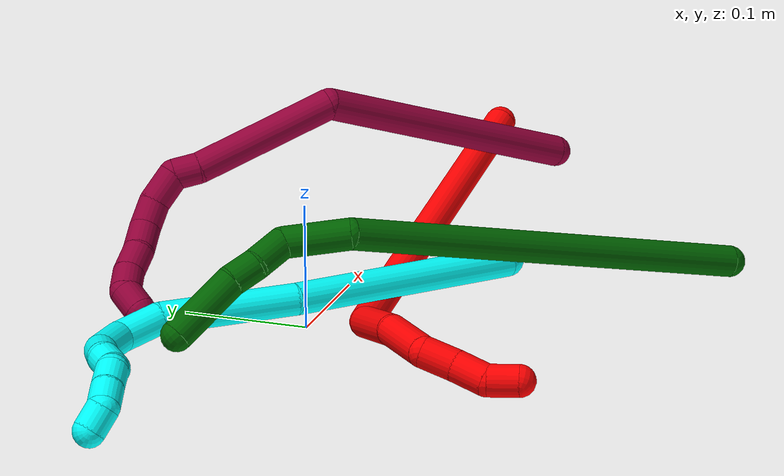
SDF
<sdf version="1.7">
 <world name="default">
  <model name="photoneo_s_sensor">
   <static>1</static>
   <pose>0 0 2 1.57079 1.57079 3.14159</pose>
   <link name="link">
    <inertial><mass>0.1</mass></inertial>
    <sensor name="sensor" type="depth">
     <update_rate>30</update_rate>
     <camera>
      <horizontal_fov>1.22</horizontal_fov>
      <image><width>1920</width><height>1200</height><format>B8G8R8</format></image>
      <clip><near>0.1</near><far>4</far></clip>
      <depth_camera><output>points</output></depth_camera>
     </camera>
     <plugin name="camera_plugin" filename="libgazebo_ros_depth_camera.so">
      <baseline>0.2</baseline>
      <alwaysOn>1</alwaysOn>
      <updateRate>0.0</updateRate>
      <cameraName>camera_ir</cameraName>
      <imageTopicName>/camera/color/image_raw</imageTopicName>
      <cameraInfoTopicName>/camera/color/camera_info</cameraInfoTopicName>
      <depthImageTopicName>/camera/depth/image_raw</depthImageTopicName>
      <depthImageCameraInfoTopicName>/camera/depth/camera_info</depthImageCameraInfoTopicName>
      <pointCloudTopicName>/camera/depth/points</pointCloudTopicName>
      <frameName>fr_optical</frameName>
      <pointCloudCutoff>0.1</pointCloudCutoff>
      <pointCloudCutoffMax>2.0</pointCloudCutoffMax>
      <distortionK1>0</distortionK1>
      <distortionK2>0</distortionK2>
      <distortionK3>0</distortionK3>
      <distortionT1>0</distortionT1>
      <distortionT2>0</distortionT2>
      <CxPrime>0</CxPrime>
      <Cx>0</Cx>
      <Cy>0</Cy>
      <focalLength>0</focalLength>
      <hackBaseline>0</hackBaseline>
     </plugin>
    </sensor>
   </link>
  </model>
  <model name="2">
   <static>0</static>
   <link name="2">
    <collision name="collision-cylinder-e_1_1_4">
     <pose>0.016493 -0.044263 0.115802 0.365093 0.132257 0.024449</pose>
     <geometry><cylinder><radius>0.0125</radius><length>0.250131</length></cylinder></geometry>
     <surface>
      <friction><ode><mu>1.16</mu><mu2>1.16</mu2><slip1>0</slip1><slip2>0</slip2></ode></friction>
      <contact><ode><kp>1e+06</kp><kd>1</kd><max_vel>0</max_vel><min_depth>0.001</min_depth></ode></contact>
     </surface>
    </collision>
    <visual name="visual-cylinder-e_1_1_4">
     <pose>0.016493 -0.044263 0.115802 0.365093 0.132257 0.024449</pose>
     <geometry><cylinder><radius>0.0125</radius><length>0.250131</length></cylinder></geometry>
     <material><ambient>1 0 0 1</ambient></material>
    </visual>
    <collision name="collision-cylinder-e_2_4_5">
     <pose>0.030352 -0.10603 0.255807 0.626139 -0.087922 -0.028478</pose>
     <geometry><cylinder><radius>0.0125</radius><length>0.05997</length></cylinder></geometry>
     <surface>
      <friction><ode><mu>1.16</mu><mu2>1.16</mu2><slip1>0</slip1><slip2>0</slip2></ode></friction>
      <contact><ode><kp>1e+06</kp><kd>1</kd><max_vel>0</max_vel><min_depth>0.001</min_depth></ode></contact>
     </surface>
    </collision>
    <visual name="visual-cylinder-e_2_4_5">
     <pose>0.030352 -0.10603 0.255807 0.626139 -0.087922 -0.028478</pose>
     <geometry><cylinder><radius>0.0125</radius><length>0.05997</length></cylinder></geometry>
     <material><ambient>1 0 0 1</ambient></material>
    </visual>
    <collision name="collision-cylinder-e_3_5_6">
     <pose>0.008494 -0.140638 0.295798 0.825411 -0.690343 -0.31231</pose>
     <geometry><cylinder><radius>0.0125</radius><length>0.060379</length></cylinder></geometry>
     <surface>
      <friction><ode><mu>1.16</mu><mu2>1.16</mu2><slip1>0</slip1><slip2>0</slip2></ode></friction>
      <contact><ode><kp>1e+06</kp><kd>1</kd><max_vel>0</max_vel><min_depth>0.001</min_depth></ode></contact>
     </surface>
    </collision>
    <visual name="visual-cylinder-e_3_5_6">
     <pose>0.008494 -0.140638 0.295798 0.825411 -0.690343 -0.31231</pose>
     <geometry><cylinder><radius>0.0125</radius><length>0.060379</length></cylinder></geometry>
     <material><ambient>1 0 0 1</ambient></material>
    </visual>
    <collision name="collision-cylinder-e_4_6_7">
     <pose>-0.028611 -0.166282 0.327426 0.494446 -0.782189 -0.207388</pose>
     <geometry><cylinder><radius>0.0125</radius><length>0.050737</length></cylinder></geometry>
     <surface>
      <friction><ode><mu>1.16</mu><mu2>1.16</mu2><slip1>0</slip1><slip2>0</slip2></ode></friction>
      <contact><ode><kp>1e+06</kp><kd>1</kd><max_vel>0</max_vel><min_depth>0.001</min_depth></ode></contact>
     </surface>
    </collision>
    <visual name="visual-cylinder-e_4_6_7">
     <pose>-0.028611 -0.166282 0.327426 0.494446 -0.782189 -0.207388</pose>
     <geometry><cylinder><radius>0.0125</radius><length>0.050737</length></cylinder></geometry>
     <material><ambient>1 0 0 1</ambient></material>
    </visual>
    <collision name="collision-cylinder-e_5_7_8">
     <pose>-0.058797 -0.170743 0.347125 -0.813206 -1.1427 0.540116</pose>
     <geometry><cylinder><radius>0.0125</radius><length>0.027053</length></cylinder></geometry>
     <surface>
      <friction><ode><mu>1.16</mu><mu2>1.16</mu2><slip1>0</slip1><slip2>0</slip2></ode></friction>
      <contact><ode><kp>1e+06</kp><kd>1</kd><max_vel>0</max_vel><min_depth>0.001</min_depth></ode></contact>
     </surface>
    </collision>
    <visual name="visual-cylinder-e_5_7_8">
     <pose>-0.058797 -0.170743 0.347125 -0.813206 -1.1427 0.540116</pose>
     <geometry><cylinder><radius>0.0125</radius><length>0.027053</length></cylinder></geometry>
     <material><ambient>1 0 0 1</ambient></material>
    </visual>
    <collision name="collision-cylinder-e_6_8_9">
     <pose>-0.083371 -0.164039 0.356232 -0.463587 -1.12462 0.295323</pose>
     <geometry><cylinder><radius>0.0125</radius><length>0.027199</length></cylinder></geometry>
     <surface>
      <friction><ode><mu>1.16</mu><mu2>1.16</mu2><slip1>0</slip1><slip2>0</slip2></ode></friction>
      <contact><ode><kp>1e+06</kp><kd>1</kd><max_vel>0</max_vel><min_depth>0.001</min_depth></ode></contact>
     </surface>
    </collision>
    <visual name="visual-cylinder-e_6_8_9">
     <pose>-0.083371 -0.164039 0.356232 -0.463587 -1.12462 0.295323</pose>
     <geometry><cylinder><radius>0.0125</radius><length>0.027199</length></cylinder></geometry>
     <material><ambient>1 0 0 1</ambient></material>
    </visual>
    <collision name="collision-cylinder-e_7_9_2">
     <pose>-0.107475 -0.158493 0.360128 -2.00442 -1.30513 1.74889</pose>
     <geometry><cylinder><radius>0.0125</radius><length>0.024532</length></cylinder></geometry>
     <surface>
      <friction><ode><mu>1.16</mu><mu2>1.16</mu2><slip1>0</slip1><slip2>0</slip2></ode></friction>
      <contact><ode><kp>1e+06</kp><kd>1</kd><max_vel>0</max_vel><min_depth>0.001</min_depth></ode></contact>
     </surface>
    </collision>
    <visual name="visual-cylinder-e_7_9_2">
     <pose>-0.107475 -0.158493 0.360128 -2.00442 -1.30513 1.74889</pose>
     <geometry><cylinder><radius>0.0125</radius><length>0.024532</length></cylinder></geometry>
     <material><ambient>1 0 0 1</ambient></material>
    </visual>
    <collision name="collision-sphere-2">
     <pose>-0.11931 -0.15557 0.358775 0 -0 0</pose>
     <geometry><sphere><radius>0.0125</radius></sphere></geometry>
     <surface>
      <friction><ode><mu>1.16</mu><mu2>1.16</mu2><slip1>0</slip1><slip2>0</slip2></ode></friction>
      <contact><ode><kp>1e+06</kp><kd>1</kd><max_vel>0</max_vel><min_depth>0.001</min_depth></ode></contact>
     </surface>
    </collision>
    <visual name="visual-sphere-2">
     <pose>-0.11931 -0.15557 0.358775 0 -0 0</pose>
     <geometry><sphere><radius>0.0125</radius></sphere></geometry>
     <material><ambient>1 0 0 1</ambient></material>
    </visual>
    <collision name="collision-sphere-9">
     <pose>-0.095639 -0.161415 0.361481 0 -0 0</pose>
     <geometry><sphere><radius>0.0125</radius></sphere></geometry>
     <surface>
      <friction><ode><mu>1.16</mu><mu2>1.16</mu2><slip1>0</slip1><slip2>0</slip2></ode></friction>
      <contact><ode><kp>1e+06</kp><kd>1</kd><max_vel>0</max_vel><min_depth>0.001</min_depth></ode></contact>
     </surface>
    </collision>
    <visual name="visual-sphere-9">
     <pose>-0.095639 -0.161415 0.361481 0 -0 0</pose>
     <geometry><sphere><radius>0.0125</radius></sphere></geometry>
     <material><ambient>1 0 0 1</ambient></material>
    </visual>
    <collision name="collision-sphere-4">
     <pose>0.032985 -0.088526 0.231604 0 -0 0</pose>
     <geometry><sphere><radius>0.0125</radius></sphere></geometry>
     <surface>
      <friction><ode><mu>1.16</mu><mu2>1.16</mu2><slip1>0</slip1><slip2>0</slip2></ode></friction>
      <contact><ode><kp>1e+06</kp><kd>1</kd><max_vel>0</max_vel><min_depth>0.001</min_depth></ode></contact>
     </surface>
    </collision>
    <visual name="visual-sphere-4">
     <pose>0.032985 -0.088526 0.231604 0 -0 0</pose>
     <geometry><sphere><radius>0.0125</radius></sphere></geometry>
     <material><ambient>1 0 0 1</ambient></material>
    </visual>
    <collision name="collision-sphere-1">
     <geometry><sphere><radius>0.0125</radius></sphere></geometry>
     <surface>
      <friction><ode><mu>1.16</mu><mu2>1.16</mu2><slip1>0</slip1><slip2>0</slip2></ode></friction>
      <contact><ode><kp>1e+06</kp><kd>1</kd><max_vel>0</max_vel><min_depth>0.001</min_depth></ode></contact>
     </surface>
    </collision>
    <visual name="visual-sphere-1">
     <geometry><sphere><radius>0.0125</radius></sphere></geometry>
     <material><ambient>1 0 0 1</ambient></material>
    </visual>
    <collision name="collision-sphere-8">
     <pose>-0.071103 -0.166663 0.350983 0 -0 0</pose>
     <geometry><sphere><radius>0.0125</radius></sphere></geometry>
     <surface>
      <friction><ode><mu>1.16</mu><mu2>1.16</mu2><slip1>0</slip1><slip2>0</slip2></ode></friction>
      <contact><ode><kp>1e+06</kp><kd>1</kd><max_vel>0</max_vel><min_depth>0.001</min_depth></ode></contact>
     </surface>
    </collision>
    <visual name="visual-sphere-8">
     <pose>-0.071103 -0.166663 0.350983 0 -0 0</pose>
     <geometry><sphere><radius>0.0125</radius></sphere></geometry>
     <material><ambient>1 0 0 1</ambient></material>
    </visual>
    <collision name="collision-sphere-5">
     <pose>0.027719 -0.123534 0.28001 0 -0 0</pose>
     <geometry><sphere><radius>0.0125</radius></sphere></geometry>
     <surface>
      <friction><ode><mu>1.16</mu><mu2>1.16</mu2><slip1>0</slip1><slip2>0</slip2></ode></friction>
      <contact><ode><kp>1e+06</kp><kd>1</kd><max_vel>0</max_vel><min_depth>0.001</min_depth></ode></contact>
     </surface>
    </collision>
    <visual name="visual-sphere-5">
     <pose>0.027719 -0.123534 0.28001 0 -0 0</pose>
     <geometry><sphere><radius>0.0125</radius></sphere></geometry>
     <material><ambient>1 0 0 1</ambient></material>
    </visual>
    <collision name="collision-sphere-6">
     <pose>-0.01073 -0.157743 0.311585 0 -0 0</pose>
     <geometry><sphere><radius>0.0125</radius></sphere></geometry>
     <surface>
      <friction><ode><mu>1.16</mu><mu2>1.16</mu2><slip1>0</slip1><slip2>0</slip2></ode></friction>
      <contact><ode><kp>1e+06</kp><kd>1</kd><max_vel>0</max_vel><min_depth>0.001</min_depth></ode></contact>
     </surface>
    </collision>
    <visual name="visual-sphere-6">
     <pose>-0.01073 -0.157743 0.311585 0 -0 0</pose>
     <geometry><sphere><radius>0.0125</radius></sphere></geometry>
     <material><ambient>1 0 0 1</ambient></material>
    </visual>
    <collision name="collision-sphere-7">
     <pose>-0.046491 -0.174822 0.343266 0 -0 0</pose>
     <geometry><sphere><radius>0.0125</radius></sphere></geometry>
     <surface>
      <friction><ode><mu>1.16</mu><mu2>1.16</mu2><slip1>0</slip1><slip2>0</slip2></ode></friction>
      <contact><ode><kp>1e+06</kp><kd>1</kd><max_vel>0</max_vel><min_depth>0.001</min_depth></ode></contact>
     </surface>
    </collision>
    <visual name="visual-sphere-7">
     <pose>-0.046491 -0.174822 0.343266 0 -0 0</pose>
     <geometry><sphere><radius>0.0125</radius></sphere></geometry>
     <material><ambient>1 0 0 1</ambient></material>
    </visual>
    <inertial>
     <pose>-0.002976 -0.094654 0.213387 0 -0 0</pose>
     <mass>0.5</mass>
     <inertia>
      <ixx>0.001365</ixx>
      <ixy>0</ixy>
      <ixz>0</ixz>
      <iyy>0.001294</iyy>
      <iyz>0</iyz>
      <izz>0.000377</izz>
     </inertia>
    </inertial>
   </link>
   <pose>0.296525 -0.064399 0.082795 -2.21026 0.146643 1.5792</pose>
  </model>
  <model name="3">
   <static>0</static>
   <link name="3">
    <collision name="collision-cylinder-e_1_1_4">
     <pose>-0.083698 0.038808 -0.019661 -2.03973 -1.09146 1.5591</pose>
     <geometry><cylinder><radius>0.0125</radius><length>0.188658</length></cylinder></geometry>
     <surface>
      <friction><ode><mu>1.16</mu><mu2>1.16</mu2><slip1>0</slip1><slip2>0</slip2></ode></friction>
      <contact><ode><kp>1e+06</kp><kd>1</kd><max_vel>0</max_vel><min_depth>0.001</min_depth></ode></contact>
     </surface>
    </collision>
    <visual name="visual-cylinder-e_1_1_4">
     <pose>-0.083698 0.038808 -0.019661 -2.03973 -1.09146 1.5591</pose>
     <geometry><cylinder><radius>0.0125</radius><length>0.188658</length></cylinder></geometry>
     <material><ambient>0.003922 1 0.996078 1</ambient></material>
    </visual>
    <collision name="collision-cylinder-e_2_4_5">
     <pose>-0.217781 0.097986 -0.041542 -1.67939 -1.18453 1.28723</pose>
     <geometry><cylinder><radius>0.0125</radius><length>0.108785</length></cylinder></geometry>
     <surface>
      <friction><ode><mu>1.16</mu><mu2>1.16</mu2><slip1>0</slip1><slip2>0</slip2></ode></friction>
      <contact><ode><kp>1e+06</kp><kd>1</kd><max_vel>0</max_vel><min_depth>0.001</min_depth></ode></contact>
     </surface>
    </collision>
    <visual name="visual-cylinder-e_2_4_5">
     <pose>-0.217781 0.097986 -0.041542 -1.67939 -1.18453 1.28723</pose>
     <geometry><cylinder><radius>0.0125</radius><length>0.108785</length></cylinder></geometry>
     <material><ambient>0.003922 1 0.996078 1</ambient></material>
    </visual>
    <collision name="collision-cylinder-e_3_5_6">
     <pose>-0.281794 0.129408 -0.047062 -1.86085 -0.868449 1.11342</pose>
     <geometry><cylinder><radius>0.0125</radius><length>0.035707</length></cylinder></geometry>
     <surface>
      <friction><ode><mu>1.16</mu><mu2>1.16</mu2><slip1>0</slip1><slip2>0</slip2></ode></friction>
      <contact><ode><kp>1e+06</kp><kd>1</kd><max_vel>0</max_vel><min_depth>0.001</min_depth></ode></contact>
     </surface>
    </collision>
    <visual name="visual-cylinder-e_3_5_6">
     <pose>-0.281794 0.129408 -0.047062 -1.86085 -0.868449 1.11342</pose>
     <geometry><cylinder><radius>0.0125</radius><length>0.035707</length></cylinder></geometry>
     <material><ambient>0.003922 1 0.996078 1</ambient></material>
    </visual>
    <collision name="collision-cylinder-e_4_6_7">
     <pose>-0.30385 0.149224 -0.065921 -2.62866 -0.440919 1.41428</pose>
     <geometry><cylinder><radius>0.0125</radius><length>0.039494</length></cylinder></geometry>
     <surface>
      <friction><ode><mu>1.16</mu><mu2>1.16</mu2><slip1>0</slip1><slip2>0</slip2></ode></friction>
      <contact><ode><kp>1e+06</kp><kd>1</kd><max_vel>0</max_vel><min_depth>0.001</min_depth></ode></contact>
     </surface>
    </collision>
    <visual name="visual-cylinder-e_4_6_7">
     <pose>-0.30385 0.149224 -0.065921 -2.62866 -0.440919 1.41428</pose>
     <geometry><cylinder><radius>0.0125</radius><length>0.039494</length></cylinder></geometry>
     <material><ambient>0.003922 1 0.996078 1</ambient></material>
    </visual>
    <collision name="collision-cylinder-e_5_7_8">
     <pose>-0.312722 0.161885 -0.094211 -2.84451 -0.033367 0.222079</pose>
     <geometry><cylinder><radius>0.0125</radius><length>0.026642</length></cylinder></geometry>
     <surface>
      <friction><ode><mu>1.16</mu><mu2>1.16</mu2><slip1>0</slip1><slip2>0</slip2></ode></friction>
      <contact><ode><kp>1e+06</kp><kd>1</kd><max_vel>0</max_vel><min_depth>0.001</min_depth></ode></contact>
     </surface>
    </collision>
    <visual name="visual-cylinder-e_5_7_8">
     <pose>-0.312722 0.161885 -0.094211 -2.84451 -0.033367 0.222079</pose>
     <geometry><cylinder><radius>0.0125</radius><length>0.026642</length></cylinder></geometry>
     <material><ambient>0.003922 1 0.996078 1</ambient></material>
    </visual>
    <collision name="collision-cylinder-e_6_8_9">
     <pose>-0.310022 0.169934 -0.115589 -2.69402 0.316727 -1.22369</pose>
     <geometry><cylinder><radius>0.0125</radius><length>0.020189</length></cylinder></geometry>
     <surface>
      <friction><ode><mu>1.16</mu><mu2>1.16</mu2><slip1>0</slip1><slip2>0</slip2></ode></friction>
      <contact><ode><kp>1e+06</kp><kd>1</kd><max_vel>0</max_vel><min_depth>0.001</min_depth></ode></contact>
     </surface>
    </collision>
    <visual name="visual-cylinder-e_6_8_9">
     <pose>-0.310022 0.169934 -0.115589 -2.69402 0.316727 -1.22369</pose>
     <geometry><cylinder><radius>0.0125</radius><length>0.020189</length></cylinder></geometry>
     <material><ambient>0.003922 1 0.996078 1</ambient></material>
    </visual>
    <collision name="collision-cylinder-e_7_9_10">
     <pose>-0.309 0.175971 -0.134069 -2.95209 -0.208866 1.66858</pose>
     <geometry><cylinder><radius>0.0125</radius><length>0.020468</length></cylinder></geometry>
     <surface>
      <friction><ode><mu>1.16</mu><mu2>1.16</mu2><slip1>0</slip1><slip2>0</slip2></ode></friction>
      <contact><ode><kp>1e+06</kp><kd>1</kd><max_vel>0</max_vel><min_depth>0.001</min_depth></ode></contact>
     </surface>
    </collision>
    <visual name="visual-cylinder-e_7_9_10">
     <pose>-0.309 0.175971 -0.134069 -2.95209 -0.208866 1.66858</pose>
     <geometry><cylinder><radius>0.0125</radius><length>0.020468</length></cylinder></geometry>
     <material><ambient>0.003922 1 0.996078 1</ambient></material>
    </visual>
    <collision name="collision-cylinder-e_8_10_11">
     <pose>-0.312402 0.185283 -0.150502 -2.29744 -0.128091 0.283713</pose>
     <geometry><cylinder><radius>0.0125</radius><length>0.020036</length></cylinder></geometry>
     <surface>
      <friction><ode><mu>1.16</mu><mu2>1.16</mu2><slip1>0</slip1><slip2>0</slip2></ode></friction>
      <contact><ode><kp>1e+06</kp><kd>1</kd><max_vel>0</max_vel><min_depth>0.001</min_depth></ode></contact>
     </surface>
    </collision>
    <visual name="visual-cylinder-e_8_10_11">
     <pose>-0.312402 0.185283 -0.150502 -2.29744 -0.128091 0.283713</pose>
     <geometry><cylinder><radius>0.0125</radius><length>0.020036</length></cylinder></geometry>
     <material><ambient>0.003922 1 0.996078 1</ambient></material>
    </visual>
    <collision name="collision-cylinder-e_9_11_12">
     <pose>-0.314561 0.200688 -0.163081 -2.21381 -0.088059 0.175671</pose>
     <geometry><cylinder><radius>0.0125</radius><length>0.020017</length></cylinder></geometry>
     <surface>
      <friction><ode><mu>1.16</mu><mu2>1.16</mu2><slip1>0</slip1><slip2>0</slip2></ode></friction>
      <contact><ode><kp>1e+06</kp><kd>1</kd><max_vel>0</max_vel><min_depth>0.001</min_depth></ode></contact>
     </surface>
    </collision>
    <visual name="visual-cylinder-e_9_11_12">
     <pose>-0.314561 0.200688 -0.163081 -2.21381 -0.088059 0.175671</pose>
     <geometry><cylinder><radius>0.0125</radius><length>0.020017</length></cylinder></geometry>
     <material><ambient>0.003922 1 0.996078 1</ambient></material>
    </visual>
    <collision name="collision-cylinder-e_10_12_2">
     <pose>-0.31845 0.218173 -0.168277 -1.48877 -0.305464 0.281712</pose>
     <geometry><cylinder><radius>0.0125</radius><length>0.020005</length></cylinder></geometry>
     <surface>
      <friction><ode><mu>1.16</mu><mu2>1.16</mu2><slip1>0</slip1><slip2>0</slip2></ode></friction>
      <contact><ode><kp>1e+06</kp><kd>1</kd><max_vel>0</max_vel><min_depth>0.001</min_depth></ode></contact>
     </surface>
    </collision>
    <visual name="visual-cylinder-e_10_12_2">
     <pose>-0.31845 0.218173 -0.168277 -1.48877 -0.305464 0.281712</pose>
     <geometry><cylinder><radius>0.0125</radius><length>0.020005</length></cylinder></geometry>
     <material><ambient>0.003922 1 0.996078 1</ambient></material>
    </visual>
    <collision name="collision-sphere-2">
     <pose>-0.321458 0.227681 -0.167496 0 -0 0</pose>
     <geometry><sphere><radius>0.0125</radius></sphere></geometry>
     <surface>
      <friction><ode><mu>1.16</mu><mu2>1.16</mu2><slip1>0</slip1><slip2>0</slip2></ode></friction>
      <contact><ode><kp>1e+06</kp><kd>1</kd><max_vel>0</max_vel><min_depth>0.001</min_depth></ode></contact>
     </surface>
    </collision>
    <visual name="visual-sphere-2">
     <pose>-0.321458 0.227681 -0.167496 0 -0 0</pose>
     <geometry><sphere><radius>0.0125</radius></sphere></geometry>
     <material><ambient>0.003922 1 0.996078 1</ambient></material>
    </visual>
    <collision name="collision-sphere-12">
     <pose>-0.315442 0.208666 -0.169059 0 -0 0</pose>
     <geometry><sphere><radius>0.0125</radius></sphere></geometry>
     <surface>
      <friction><ode><mu>1.16</mu><mu2>1.16</mu2><slip1>0</slip1><slip2>0</slip2></ode></friction>
      <contact><ode><kp>1e+06</kp><kd>1</kd><max_vel>0</max_vel><min_depth>0.001</min_depth></ode></contact>
     </surface>
    </collision>
    <visual name="visual-sphere-12">
     <pose>-0.315442 0.208666 -0.169059 0 -0 0</pose>
     <geometry><sphere><radius>0.0125</radius></sphere></geometry>
     <material><ambient>0.003922 1 0.996078 1</ambient></material>
    </visual>
    <collision name="collision-sphere-11">
     <pose>-0.313681 0.192709 -0.157103 0 -0 0</pose>
     <geometry><sphere><radius>0.0125</radius></sphere></geometry>
     <surface>
      <friction><ode><mu>1.16</mu><mu2>1.16</mu2><slip1>0</slip1><slip2>0</slip2></ode></friction>
      <contact><ode><kp>1e+06</kp><kd>1</kd><max_vel>0</max_vel><min_depth>0.001</min_depth></ode></contact>
     </surface>
    </collision>
    <visual name="visual-sphere-11">
     <pose>-0.313681 0.192709 -0.157103 0 -0 0</pose>
     <geometry><sphere><radius>0.0125</radius></sphere></geometry>
     <material><ambient>0.003922 1 0.996078 1</ambient></material>
    </visual>
    <collision name="collision-sphere-10">
     <pose>-0.311122 0.177857 -0.143901 0 -0 0</pose>
     <geometry><sphere><radius>0.0125</radius></sphere></geometry>
     <surface>
      <friction><ode><mu>1.16</mu><mu2>1.16</mu2><slip1>0</slip1><slip2>0</slip2></ode></friction>
      <contact><ode><kp>1e+06</kp><kd>1</kd><max_vel>0</max_vel><min_depth>0.001</min_depth></ode></contact>
     </surface>
    </collision>
    <visual name="visual-sphere-10">
     <pose>-0.311122 0.177857 -0.143901 0 -0 0</pose>
     <geometry><sphere><radius>0.0125</radius></sphere></geometry>
     <material><ambient>0.003922 1 0.996078 1</ambient></material>
    </visual>
    <collision name="collision-sphere-9">
     <pose>-0.306878 0.174085 -0.124237 0 -0 0</pose>
     <geometry><sphere><radius>0.0125</radius></sphere></geometry>
     <surface>
      <friction><ode><mu>1.16</mu><mu2>1.16</mu2><slip1>0</slip1><slip2>0</slip2></ode></friction>
      <contact><ode><kp>1e+06</kp><kd>1</kd><max_vel>0</max_vel><min_depth>0.001</min_depth></ode></contact>
     </surface>
    </collision>
    <visual name="visual-sphere-9">
     <pose>-0.306878 0.174085 -0.124237 0 -0 0</pose>
     <geometry><sphere><radius>0.0125</radius></sphere></geometry>
     <material><ambient>0.003922 1 0.996078 1</ambient></material>
    </visual>
    <collision name="collision-sphere-4">
     <pose>-0.167396 0.077615 -0.039322 0 -0 0</pose>
     <geometry><sphere><radius>0.0125</radius></sphere></geometry>
     <surface>
      <friction><ode><mu>1.16</mu><mu2>1.16</mu2><slip1>0</slip1><slip2>0</slip2></ode></friction>
      <contact><ode><kp>1e+06</kp><kd>1</kd><max_vel>0</max_vel><min_depth>0.001</min_depth></ode></contact>
     </surface>
    </collision>
    <visual name="visual-sphere-4">
     <pose>-0.167396 0.077615 -0.039322 0 -0 0</pose>
     <geometry><sphere><radius>0.0125</radius></sphere></geometry>
     <material><ambient>0.003922 1 0.996078 1</ambient></material>
    </visual>
    <collision name="collision-sphere-1">
     <geometry><sphere><radius>0.0125</radius></sphere></geometry>
     <surface>
      <friction><ode><mu>1.16</mu><mu2>1.16</mu2><slip1>0</slip1><slip2>0</slip2></ode></friction>
      <contact><ode><kp>1e+06</kp><kd>1</kd><max_vel>0</max_vel><min_depth>0.001</min_depth></ode></contact>
     </surface>
    </collision>
    <visual name="visual-sphere-1">
     <geometry><sphere><radius>0.0125</radius></sphere></geometry>
     <material><ambient>0.003922 1 0.996078 1</ambient></material>
    </visual>
    <collision name="collision-sphere-8">
     <pose>-0.313166 0.165782 -0.106941 0 -0 0</pose>
     <geometry><sphere><radius>0.0125</radius></sphere></geometry>
     <surface>
      <friction><ode><mu>1.16</mu><mu2>1.16</mu2><slip1>0</slip1><slip2>0</slip2></ode></friction>
      <contact><ode><kp>1e+06</kp><kd>1</kd><max_vel>0</max_vel><min_depth>0.001</min_depth></ode></contact>
     </surface>
    </collision>
    <visual name="visual-sphere-8">
     <pose>-0.313166 0.165782 -0.106941 0 -0 0</pose>
     <geometry><sphere><radius>0.0125</radius></sphere></geometry>
     <material><ambient>0.003922 1 0.996078 1</ambient></material>
    </visual>
    <collision name="collision-sphere-5">
     <pose>-0.268166 0.118357 -0.043763 0 -0 0</pose>
     <geometry><sphere><radius>0.0125</radius></sphere></geometry>
     <surface>
      <friction><ode><mu>1.16</mu><mu2>1.16</mu2><slip1>0</slip1><slip2>0</slip2></ode></friction>
      <contact><ode><kp>1e+06</kp><kd>1</kd><max_vel>0</max_vel><min_depth>0.001</min_depth></ode></contact>
     </surface>
    </collision>
    <visual name="visual-sphere-5">
     <pose>-0.268166 0.118357 -0.043763 0 -0 0</pose>
     <geometry><sphere><radius>0.0125</radius></sphere></geometry>
     <material><ambient>0.003922 1 0.996078 1</ambient></material>
    </visual>
    <collision name="collision-sphere-6">
     <pose>-0.295423 0.14046 -0.050361 0 -0 0</pose>
     <geometry><sphere><radius>0.0125</radius></sphere></geometry>
     <surface>
      <friction><ode><mu>1.16</mu><mu2>1.16</mu2><slip1>0</slip1><slip2>0</slip2></ode></friction>
      <contact><ode><kp>1e+06</kp><kd>1</kd><max_vel>0</max_vel><min_depth>0.001</min_depth></ode></contact>
     </surface>
    </collision>
    <visual name="visual-sphere-6">
     <pose>-0.295423 0.14046 -0.050361 0 -0 0</pose>
     <geometry><sphere><radius>0.0125</radius></sphere></geometry>
     <material><ambient>0.003922 1 0.996078 1</ambient></material>
    </visual>
    <collision name="collision-sphere-7">
     <pose>-0.312277 0.157987 -0.081481 0 -0 0</pose>
     <geometry><sphere><radius>0.0125</radius></sphere></geometry>
     <surface>
      <friction><ode><mu>1.16</mu><mu2>1.16</mu2><slip1>0</slip1><slip2>0</slip2></ode></friction>
      <contact><ode><kp>1e+06</kp><kd>1</kd><max_vel>0</max_vel><min_depth>0.001</min_depth></ode></contact>
     </surface>
    </collision>
    <visual name="visual-sphere-7">
     <pose>-0.312277 0.157987 -0.081481 0 -0 0</pose>
     <geometry><sphere><radius>0.0125</radius></sphere></geometry>
     <material><ambient>0.003922 1 0.996078 1</ambient></material>
    </visual>
    <inertial>
     <pose>-0.20277 0.103869 -0.059492 0 -0 0</pose>
     <mass>0.5</mass>
     <inertia>
      <ixx>0.000312</ixx>
      <ixy>0</ixy>
      <ixz>0</ixz>
      <iyy>0.00087</iyy>
      <iyz>0</iyz>
      <izz>0.000314</izz>
     </inertia>
    </inertial>
   </link>
   <pose>0.106197 -0.130246 0.03364 -2.03969 0.313936 -1.1101</pose>
  </model>
  <model name="6">
   <static>0</static>
   <link name="6">
    <collision name="collision-cylinder-e_1_1_4">
     <pose>-0.133127 0.050407 -0.088688 -2.62476 -0.916963 2.15822</pose>
     <geometry><cylinder><radius>0.0125</radius><length>0.335435</length></cylinder></geometry>
     <surface>
      <friction><ode><mu>1.16</mu><mu2>1.16</mu2><slip1>0</slip1><slip2>0</slip2></ode></friction>
      <contact><ode><kp>1e+06</kp><kd>1</kd><max_vel>0</max_vel><min_depth>0.001</min_depth></ode></contact>
     </surface>
    </collision>
    <visual name="visual-cylinder-e_1_1_4">
     <pose>-0.133127 0.050407 -0.088688 -2.62476 -0.916963 2.15822</pose>
     <geometry><cylinder><radius>0.0125</radius><length>0.335435</length></cylinder></geometry>
     <material><ambient>0 0.392157 0.003922 1</ambient></material>
    </visual>
    <collision name="collision-cylinder-e_2_4_5">
     <pose>-0.287825 0.095085 -0.191409 2.75401 -0.958222 -2.41917</pose>
     <geometry><cylinder><radius>0.0125</radius><length>0.052728</length></cylinder></geometry>
     <surface>
      <friction><ode><mu>1.16</mu><mu2>1.16</mu2><slip1>0</slip1><slip2>0</slip2></ode></friction>
      <contact><ode><kp>1e+06</kp><kd>1</kd><max_vel>0</max_vel><min_depth>0.001</min_depth></ode></contact>
     </surface>
    </collision>
    <visual name="visual-cylinder-e_2_4_5">
     <pose>-0.287825 0.095085 -0.191409 2.75401 -0.958222 -2.41917</pose>
     <geometry><cylinder><radius>0.0125</radius><length>0.052728</length></cylinder></geometry>
     <material><ambient>0 0.392157 0.003922 1</ambient></material>
    </visual>
    <collision name="collision-cylinder-e_3_5_6">
     <pose>-0.324044 0.092108 -0.204109 -1.11951 -1.36491 0.94206</pose>
     <geometry><cylinder><radius>0.0125</radius><length>0.02993</length></cylinder></geometry>
     <surface>
      <friction><ode><mu>1.16</mu><mu2>1.16</mu2><slip1>0</slip1><slip2>0</slip2></ode></friction>
      <contact><ode><kp>1e+06</kp><kd>1</kd><max_vel>0</max_vel><min_depth>0.001</min_depth></ode></contact>
     </surface>
    </collision>
    <visual name="visual-cylinder-e_3_5_6">
     <pose>-0.324044 0.092108 -0.204109 -1.11951 -1.36491 0.94206</pose>
     <geometry><cylinder><radius>0.0125</radius><length>0.02993</length></cylinder></geometry>
     <material><ambient>0 0.392157 0.003922 1</ambient></material>
    </visual>
    <collision name="collision-cylinder-e_4_6_7">
     <pose>-0.350254 0.09448 -0.203194 2.40338 -1.52184 -2.36983</pose>
     <geometry><cylinder><radius>0.0125</radius><length>0.02315</length></cylinder></geometry>
     <surface>
      <friction><ode><mu>1.16</mu><mu2>1.16</mu2><slip1>0</slip1><slip2>0</slip2></ode></friction>
      <contact><ode><kp>1e+06</kp><kd>1</kd><max_vel>0</max_vel><min_depth>0.001</min_depth></ode></contact>
     </surface>
    </collision>
    <visual name="visual-cylinder-e_4_6_7">
     <pose>-0.350254 0.09448 -0.203194 2.40338 -1.52184 -2.36983</pose>
     <geometry><cylinder><radius>0.0125</radius><length>0.02315</length></cylinder></geometry>
     <material><ambient>0 0.392157 0.003922 1</ambient></material>
    </visual>
    <collision name="collision-cylinder-e_5_7_2">
     <pose>-0.390704 0.090613 -0.199565 0.710914 -1.38793 -0.599147</pose>
     <geometry><cylinder><radius>0.0125</radius><length>0.058757</length></cylinder></geometry>
     <surface>
      <friction><ode><mu>1.16</mu><mu2>1.16</mu2><slip1>0</slip1><slip2>0</slip2></ode></friction>
      <contact><ode><kp>1e+06</kp><kd>1</kd><max_vel>0</max_vel><min_depth>0.001</min_depth></ode></contact>
     </surface>
    </collision>
    <visual name="visual-cylinder-e_5_7_2">
     <pose>-0.390704 0.090613 -0.199565 0.710914 -1.38793 -0.599147</pose>
     <geometry><cylinder><radius>0.0125</radius><length>0.058757</length></cylinder></geometry>
     <material><ambient>0 0.392157 0.003922 1</ambient></material>
    </visual>
    <collision name="collision-sphere-2">
     <pose>-0.419592 0.087127 -0.195517 0 -0 0</pose>
     <geometry><sphere><radius>0.0125</radius></sphere></geometry>
     <surface>
      <friction><ode><mu>1.16</mu><mu2>1.16</mu2><slip1>0</slip1><slip2>0</slip2></ode></friction>
      <contact><ode><kp>1e+06</kp><kd>1</kd><max_vel>0</max_vel><min_depth>0.001</min_depth></ode></contact>
     </surface>
    </collision>
    <visual name="visual-sphere-2">
     <pose>-0.419592 0.087127 -0.195517 0 -0 0</pose>
     <geometry><sphere><radius>0.0125</radius></sphere></geometry>
     <material><ambient>0 0.392157 0.003922 1</ambient></material>
    </visual>
    <collision name="collision-sphere-7">
     <pose>-0.361815 0.094099 -0.203613 0 -0 0</pose>
     <geometry><sphere><radius>0.0125</radius></sphere></geometry>
     <surface>
      <friction><ode><mu>1.16</mu><mu2>1.16</mu2><slip1>0</slip1><slip2>0</slip2></ode></friction>
      <contact><ode><kp>1e+06</kp><kd>1</kd><max_vel>0</max_vel><min_depth>0.001</min_depth></ode></contact>
     </surface>
    </collision>
    <visual name="visual-sphere-7">
     <pose>-0.361815 0.094099 -0.203613 0 -0 0</pose>
     <geometry><sphere><radius>0.0125</radius></sphere></geometry>
     <material><ambient>0 0.392157 0.003922 1</ambient></material>
    </visual>
    <collision name="collision-sphere-6">
     <pose>-0.338693 0.094862 -0.202775 0 -0 0</pose>
     <geometry><sphere><radius>0.0125</radius></sphere></geometry>
     <surface>
      <friction><ode><mu>1.16</mu><mu2>1.16</mu2><slip1>0</slip1><slip2>0</slip2></ode></friction>
      <contact><ode><kp>1e+06</kp><kd>1</kd><max_vel>0</max_vel><min_depth>0.001</min_depth></ode></contact>
     </surface>
    </collision>
    <visual name="visual-sphere-6">
     <pose>-0.338693 0.094862 -0.202775 0 -0 0</pose>
     <geometry><sphere><radius>0.0125</radius></sphere></geometry>
     <material><ambient>0 0.392157 0.003922 1</ambient></material>
    </visual>
    <collision name="collision-sphere-5">
     <pose>-0.309395 0.089355 -0.205444 0 -0 0</pose>
     <geometry><sphere><radius>0.0125</radius></sphere></geometry>
     <surface>
      <friction><ode><mu>1.16</mu><mu2>1.16</mu2><slip1>0</slip1><slip2>0</slip2></ode></friction>
      <contact><ode><kp>1e+06</kp><kd>1</kd><max_vel>0</max_vel><min_depth>0.001</min_depth></ode></contact>
     </surface>
    </collision>
    <visual name="visual-sphere-5">
     <pose>-0.309395 0.089355 -0.205444 0 -0 0</pose>
     <geometry><sphere><radius>0.0125</radius></sphere></geometry>
     <material><ambient>0 0.392157 0.003922 1</ambient></material>
    </visual>
    <collision name="collision-sphere-1">
     <geometry><sphere><radius>0.0125</radius></sphere></geometry>
     <surface>
      <friction><ode><mu>1.16</mu><mu2>1.16</mu2><slip1>0</slip1><slip2>0</slip2></ode></friction>
      <contact><ode><kp>1e+06</kp><kd>1</kd><max_vel>0</max_vel><min_depth>0.001</min_depth></ode></contact>
     </surface>
    </collision>
    <visual name="visual-sphere-1">
     <geometry><sphere><radius>0.0125</radius></sphere></geometry>
     <material><ambient>0 0.392157 0.003922 1</ambient></material>
    </visual>
    <collision name="collision-sphere-4">
     <pose>-0.266254 0.100814 -0.177375 0 -0 0</pose>
     <geometry><sphere><radius>0.0125</radius></sphere></geometry>
     <surface>
      <friction><ode><mu>1.16</mu><mu2>1.16</mu2><slip1>0</slip1><slip2>0</slip2></ode></friction>
      <contact><ode><kp>1e+06</kp><kd>1</kd><max_vel>0</max_vel><min_depth>0.001</min_depth></ode></contact>
     </surface>
    </collision>
    <visual name="visual-sphere-4">
     <pose>-0.266254 0.100814 -0.177375 0 -0 0</pose>
     <geometry><sphere><radius>0.0125</radius></sphere></geometry>
     <material><ambient>0 0.392157 0.003922 1</ambient></material>
    </visual>
    <inertial>
     <pose>-0.201191 0.06438 -0.124761 0 -0 0</pose>
     <mass>0.5</mass>
     <inertia>
      <ixx>0.000492</ixx>
      <ixy>0</ixy>
      <ixz>0</ixz>
      <iyy>0.004189</iyy>
      <iyz>0</iyz>
      <izz>0.001583</izz>
     </inertia>
    </inertial>
   </link>
   <pose>0.191801 -0.288289 0.021586 2.37069 -0.419253 -0.660808</pose>
  </model>
  <model name="8">
   <static>0</static>
   <link name="8">
    <collision name="collision-cylinder-e_1_1_4">
     <pose>-0.056376 0.096862 -0.009102 -1.66449 -0.525189 0.574175</pose>
     <geometry><cylinder><radius>0.0125</radius><length>0.224885</length></cylinder></geometry>
     <surface>
      <friction><ode><mu>1.16</mu><mu2>1.16</mu2><slip1>0</slip1><slip2>0</slip2></ode></friction>
      <contact><ode><kp>1e+06</kp><kd>1</kd><max_vel>0</max_vel><min_depth>0.001</min_depth></ode></contact>
     </surface>
    </collision>
    <visual name="visual-cylinder-e_1_1_4">
     <pose>-0.056376 0.096862 -0.009102 -1.66449 -0.525189 0.574175</pose>
     <geometry><cylinder><radius>0.0125</radius><length>0.224885</length></cylinder></geometry>
     <material><ambient>0.584314 0 0.227451 1</ambient></material>
    </visual>
    <collision name="collision-cylinder-e_2_4_5">
     <pose>-0.166512 0.210931 -0.031196 -2.2175 -1.18937 1.87225</pose>
     <geometry><cylinder><radius>0.0125</radius><length>0.115845</length></cylinder></geometry>
     <surface>
      <friction><ode><mu>1.16</mu><mu2>1.16</mu2><slip1>0</slip1><slip2>0</slip2></ode></friction>
      <contact><ode><kp>1e+06</kp><kd>1</kd><max_vel>0</max_vel><min_depth>0.001</min_depth></ode></contact>
     </surface>
    </collision>
    <visual name="visual-cylinder-e_2_4_5">
     <pose>-0.166512 0.210931 -0.031196 -2.2175 -1.18937 1.87225</pose>
     <geometry><cylinder><radius>0.0125</radius><length>0.115845</length></cylinder></geometry>
     <material><ambient>0.584314 0 0.227451 1</ambient></material>
    </visual>
    <collision name="collision-cylinder-e_3_5_6">
     <pose>-0.228833 0.232442 -0.047941 -2.28801 -0.982633 1.73277</pose>
     <geometry><cylinder><radius>0.0125</radius><length>0.020583</length></cylinder></geometry>
     <surface>
      <friction><ode><mu>1.16</mu><mu2>1.16</mu2><slip1>0</slip1><slip2>0</slip2></ode></friction>
      <contact><ode><kp>1e+06</kp><kd>1</kd><max_vel>0</max_vel><min_depth>0.001</min_depth></ode></contact>
     </surface>
    </collision>
    <visual name="visual-cylinder-e_3_5_6">
     <pose>-0.228833 0.232442 -0.047941 -2.28801 -0.982633 1.73277</pose>
     <geometry><cylinder><radius>0.0125</radius><length>0.020583</length></cylinder></geometry>
     <material><ambient>0.584314 0 0.227451 1</ambient></material>
    </visual>
    <collision name="collision-cylinder-e_4_6_7">
     <pose>-0.250662 0.235076 -0.051292 1.33452 -1.44211 -1.21125</pose>
     <geometry><cylinder><radius>0.0125</radius><length>0.026754</length></cylinder></geometry>
     <surface>
      <friction><ode><mu>1.16</mu><mu2>1.16</mu2><slip1>0</slip1><slip2>0</slip2></ode></friction>
      <contact><ode><kp>1e+06</kp><kd>1</kd><max_vel>0</max_vel><min_depth>0.001</min_depth></ode></contact>
     </surface>
    </collision>
    <visual name="visual-cylinder-e_4_6_7">
     <pose>-0.250662 0.235076 -0.051292 1.33452 -1.44211 -1.21125</pose>
     <geometry><cylinder><radius>0.0125</radius><length>0.026754</length></cylinder></geometry>
     <material><ambient>0.584314 0 0.227451 1</ambient></material>
    </visual>
    <collision name="collision-cylinder-e_5_7_8">
     <pose>-0.274223 0.231182 -0.047284 0.552836 -1.18028 -0.375518</pose>
     <geometry><cylinder><radius>0.0125</radius><length>0.022265</length></cylinder></geometry>
     <surface>
      <friction><ode><mu>1.16</mu><mu2>1.16</mu2><slip1>0</slip1><slip2>0</slip2></ode></friction>
      <contact><ode><kp>1e+06</kp><kd>1</kd><max_vel>0</max_vel><min_depth>0.001</min_depth></ode></contact>
     </surface>
    </collision>
    <visual name="visual-cylinder-e_5_7_8">
     <pose>-0.274223 0.231182 -0.047284 0.552836 -1.18028 -0.375518</pose>
     <geometry><cylinder><radius>0.0125</radius><length>0.022265</length></cylinder></geometry>
     <material><ambient>0.584314 0 0.227451 1</ambient></material>
    </visual>
    <collision name="collision-cylinder-e_6_8_9">
     <pose>-0.293727 0.23058 -0.034703 -0.178935 -0.790253 0.074792</pose>
     <geometry><cylinder><radius>0.0125</radius><length>0.025923</length></cylinder></geometry>
     <surface>
      <friction><ode><mu>1.16</mu><mu2>1.16</mu2><slip1>0</slip1><slip2>0</slip2></ode></friction>
      <contact><ode><kp>1e+06</kp><kd>1</kd><max_vel>0</max_vel><min_depth>0.001</min_depth></ode></contact>
     </surface>
    </collision>
    <visual name="visual-cylinder-e_6_8_9">
     <pose>-0.293727 0.23058 -0.034703 -0.178935 -0.790253 0.074792</pose>
     <geometry><cylinder><radius>0.0125</radius><length>0.025923</length></cylinder></geometry>
     <material><ambient>0.584314 0 0.227451 1</ambient></material>
    </visual>
    <collision name="collision-cylinder-e_7_9_10">
     <pose>-0.312323 0.233493 -0.019524 -0.204882 -0.977026 0.109165</pose>
     <geometry><cylinder><radius>0.0125</radius><length>0.022649</length></cylinder></geometry>
     <surface>
      <friction><ode><mu>1.16</mu><mu2>1.16</mu2><slip1>0</slip1><slip2>0</slip2></ode></friction>
      <contact><ode><kp>1e+06</kp><kd>1</kd><max_vel>0</max_vel><min_depth>0.001</min_depth></ode></contact>
     </surface>
    </collision>
    <visual name="visual-cylinder-e_7_9_10">
     <pose>-0.312323 0.233493 -0.019524 -0.204882 -0.977026 0.109165</pose>
     <geometry><cylinder><radius>0.0125</radius><length>0.022649</length></cylinder></geometry>
     <material><ambient>0.584314 0 0.227451 1</ambient></material>
    </visual>
    <collision name="collision-cylinder-e_8_10_11">
     <pose>-0.328814 0.235486 -0.005781 -0.093156 -0.753548 0.036882</pose>
     <geometry><cylinder><radius>0.0125</radius><length>0.020768</length></cylinder></geometry>
     <surface>
      <friction><ode><mu>1.16</mu><mu2>1.16</mu2><slip1>0</slip1><slip2>0</slip2></ode></friction>
      <contact><ode><kp>1e+06</kp><kd>1</kd><max_vel>0</max_vel><min_depth>0.001</min_depth></ode></contact>
     </surface>
    </collision>
    <visual name="visual-cylinder-e_8_10_11">
     <pose>-0.328814 0.235486 -0.005781 -0.093156 -0.753548 0.036882</pose>
     <geometry><cylinder><radius>0.0125</radius><length>0.020768</length></cylinder></geometry>
     <material><ambient>0.584314 0 0.227451 1</ambient></material>
    </visual>
    <collision name="collision-cylinder-e_9_11_2">
     <pose>-0.33807 0.232105 0.010814 0.423819 -0.213171 -0.046028</pose>
     <geometry><cylinder><radius>0.0125</radius><length>0.020328</length></cylinder></geometry>
     <surface>
      <friction><ode><mu>1.16</mu><mu2>1.16</mu2><slip1>0</slip1><slip2>0</slip2></ode></friction>
      <contact><ode><kp>1e+06</kp><kd>1</kd><max_vel>0</max_vel><min_depth>0.001</min_depth></ode></contact>
     </surface>
    </collision>
    <visual name="visual-cylinder-e_9_11_2">
     <pose>-0.33807 0.232105 0.010814 0.423819 -0.213171 -0.046028</pose>
     <geometry><cylinder><radius>0.0125</radius><length>0.020328</length></cylinder></geometry>
     <material><ambient>0.584314 0 0.227451 1</ambient></material>
    </visual>
    <collision name="collision-sphere-2">
     <pose>-0.34022 0.22802 0.019869 0 -0 0</pose>
     <geometry><sphere><radius>0.0125</radius></sphere></geometry>
     <surface>
      <friction><ode><mu>1.16</mu><mu2>1.16</mu2><slip1>0</slip1><slip2>0</slip2></ode></friction>
      <contact><ode><kp>1e+06</kp><kd>1</kd><max_vel>0</max_vel><min_depth>0.001</min_depth></ode></contact>
     </surface>
    </collision>
    <visual name="visual-sphere-2">
     <pose>-0.34022 0.22802 0.019869 0 -0 0</pose>
     <geometry><sphere><radius>0.0125</radius></sphere></geometry>
     <material><ambient>0.584314 0 0.227451 1</ambient></material>
    </visual>
    <collision name="collision-sphere-11">
     <pose>-0.335919 0.23619 0.001759 0 -0 0</pose>
     <geometry><sphere><radius>0.0125</radius></sphere></geometry>
     <surface>
      <friction><ode><mu>1.16</mu><mu2>1.16</mu2><slip1>0</slip1><slip2>0</slip2></ode></friction>
      <contact><ode><kp>1e+06</kp><kd>1</kd><max_vel>0</max_vel><min_depth>0.001</min_depth></ode></contact>
     </surface>
    </collision>
    <visual name="visual-sphere-11">
     <pose>-0.335919 0.23619 0.001759 0 -0 0</pose>
     <geometry><sphere><radius>0.0125</radius></sphere></geometry>
     <material><ambient>0.584314 0 0.227451 1</ambient></material>
    </visual>
    <collision name="collision-sphere-10">
     <pose>-0.321709 0.234782 -0.013321 0 -0 0</pose>
     <geometry><sphere><radius>0.0125</radius></sphere></geometry>
     <surface>
      <friction><ode><mu>1.16</mu><mu2>1.16</mu2><slip1>0</slip1><slip2>0</slip2></ode></friction>
      <contact><ode><kp>1e+06</kp><kd>1</kd><max_vel>0</max_vel><min_depth>0.001</min_depth></ode></contact>
     </surface>
    </collision>
    <visual name="visual-sphere-10">
     <pose>-0.321709 0.234782 -0.013321 0 -0 0</pose>
     <geometry><sphere><radius>0.0125</radius></sphere></geometry>
     <material><ambient>0.584314 0 0.227451 1</ambient></material>
    </visual>
    <collision name="collision-sphere-9">
     <pose>-0.302936 0.232203 -0.025728 0 -0 0</pose>
     <geometry><sphere><radius>0.0125</radius></sphere></geometry>
     <surface>
      <friction><ode><mu>1.16</mu><mu2>1.16</mu2><slip1>0</slip1><slip2>0</slip2></ode></friction>
      <contact><ode><kp>1e+06</kp><kd>1</kd><max_vel>0</max_vel><min_depth>0.001</min_depth></ode></contact>
     </surface>
    </collision>
    <visual name="visual-sphere-9">
     <pose>-0.302936 0.232203 -0.025728 0 -0 0</pose>
     <geometry><sphere><radius>0.0125</radius></sphere></geometry>
     <material><ambient>0.584314 0 0.227451 1</ambient></material>
    </visual>
    <collision name="collision-sphere-4">
     <pose>-0.112752 0.193724 -0.018204 0 -0 0</pose>
     <geometry><sphere><radius>0.0125</radius></sphere></geometry>
     <surface>
      <friction><ode><mu>1.16</mu><mu2>1.16</mu2><slip1>0</slip1><slip2>0</slip2></ode></friction>
      <contact><ode><kp>1e+06</kp><kd>1</kd><max_vel>0</max_vel><min_depth>0.001</min_depth></ode></contact>
     </surface>
    </collision>
    <visual name="visual-sphere-4">
     <pose>-0.112752 0.193724 -0.018204 0 -0 0</pose>
     <geometry><sphere><radius>0.0125</radius></sphere></geometry>
     <material><ambient>0.584314 0 0.227451 1</ambient></material>
    </visual>
    <collision name="collision-sphere-1">
     <geometry><sphere><radius>0.0125</radius></sphere></geometry>
     <surface>
      <friction><ode><mu>1.16</mu><mu2>1.16</mu2><slip1>0</slip1><slip2>0</slip2></ode></friction>
      <contact><ode><kp>1e+06</kp><kd>1</kd><max_vel>0</max_vel><min_depth>0.001</min_depth></ode></contact>
     </surface>
    </collision>
    <visual name="visual-sphere-1">
     <geometry><sphere><radius>0.0125</radius></sphere></geometry>
     <material><ambient>0.584314 0 0.227451 1</ambient></material>
    </visual>
    <collision name="collision-sphere-8">
     <pose>-0.284517 0.228957 -0.043677 0 -0 0</pose>
     <geometry><sphere><radius>0.0125</radius></sphere></geometry>
     <surface>
      <friction><ode><mu>1.16</mu><mu2>1.16</mu2><slip1>0</slip1><slip2>0</slip2></ode></friction>
      <contact><ode><kp>1e+06</kp><kd>1</kd><max_vel>0</max_vel><min_depth>0.001</min_depth></ode></contact>
     </surface>
    </collision>
    <visual name="visual-sphere-8">
     <pose>-0.284517 0.228957 -0.043677 0 -0 0</pose>
     <geometry><sphere><radius>0.0125</radius></sphere></geometry>
     <material><ambient>0.584314 0 0.227451 1</ambient></material>
    </visual>
    <collision name="collision-sphere-5">
     <pose>-0.220271 0.228139 -0.044188 0 -0 0</pose>
     <geometry><sphere><radius>0.0125</radius></sphere></geometry>
     <surface>
      <friction><ode><mu>1.16</mu><mu2>1.16</mu2><slip1>0</slip1><slip2>0</slip2></ode></friction>
      <contact><ode><kp>1e+06</kp><kd>1</kd><max_vel>0</max_vel><min_depth>0.001</min_depth></ode></contact>
     </surface>
    </collision>
    <visual name="visual-sphere-5">
     <pose>-0.220271 0.228139 -0.044188 0 -0 0</pose>
     <geometry><sphere><radius>0.0125</radius></sphere></geometry>
     <material><ambient>0.584314 0 0.227451 1</ambient></material>
    </visual>
    <collision name="collision-sphere-6">
     <pose>-0.237395 0.236745 -0.051694 0 -0 0</pose>
     <geometry><sphere><radius>0.0125</radius></sphere></geometry>
     <surface>
      <friction><ode><mu>1.16</mu><mu2>1.16</mu2><slip1>0</slip1><slip2>0</slip2></ode></friction>
      <contact><ode><kp>1e+06</kp><kd>1</kd><max_vel>0</max_vel><min_depth>0.001</min_depth></ode></contact>
     </surface>
    </collision>
    <visual name="visual-sphere-6">
     <pose>-0.237395 0.236745 -0.051694 0 -0 0</pose>
     <geometry><sphere><radius>0.0125</radius></sphere></geometry>
     <material><ambient>0.584314 0 0.227451 1</ambient></material>
    </visual>
    <collision name="collision-sphere-7">
     <pose>-0.263928 0.233408 -0.05089 0 -0 0</pose>
     <geometry><sphere><radius>0.0125</radius></sphere></geometry>
     <surface>
      <friction><ode><mu>1.16</mu><mu2>1.16</mu2><slip1>0</slip1><slip2>0</slip2></ode></friction>
      <contact><ode><kp>1e+06</kp><kd>1</kd><max_vel>0</max_vel><min_depth>0.001</min_depth></ode></contact>
     </surface>
    </collision>
    <visual name="visual-sphere-7">
     <pose>-0.263928 0.233408 -0.05089 0 -0 0</pose>
     <geometry><sphere><radius>0.0125</radius></sphere></geometry>
     <material><ambient>0.584314 0 0.227451 1</ambient></material>
    </visual>
    <inertial>
     <pose>-0.155757 0.166627 -0.020629 0 -0 0</pose>
     <mass>0.5</mass>
     <inertia>
      <ixx>0.001157</ixx>
      <ixy>0</ixy>
      <ixz>0</ixz>
      <iyy>0.000831</iyy>
      <iyz>0</iyz>
      <izz>-0.000248</izz>
     </inertia>
    </inertial>
   </link>
   <pose>0.283623 -0.115992 0.066865 1.64627 -0.705675 -0.706193</pose>
  </model>
 </world>
</sdf>
